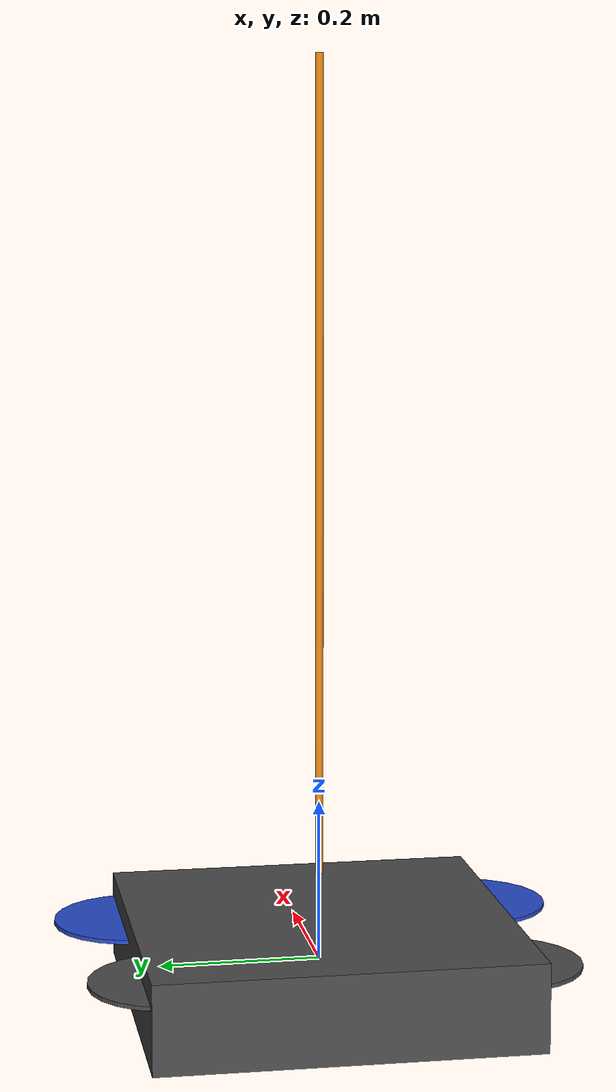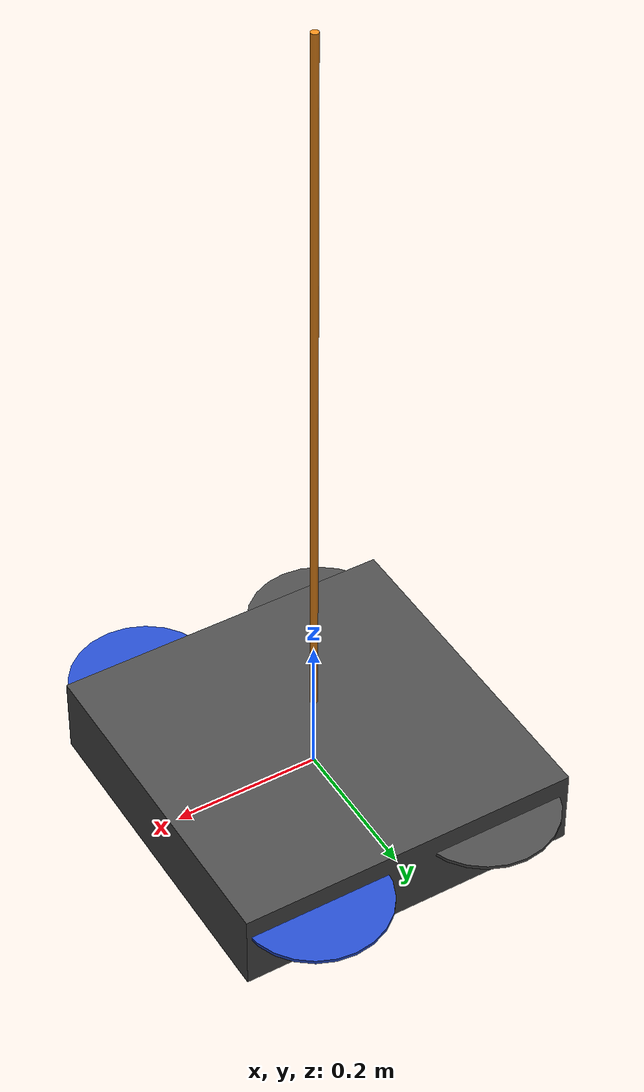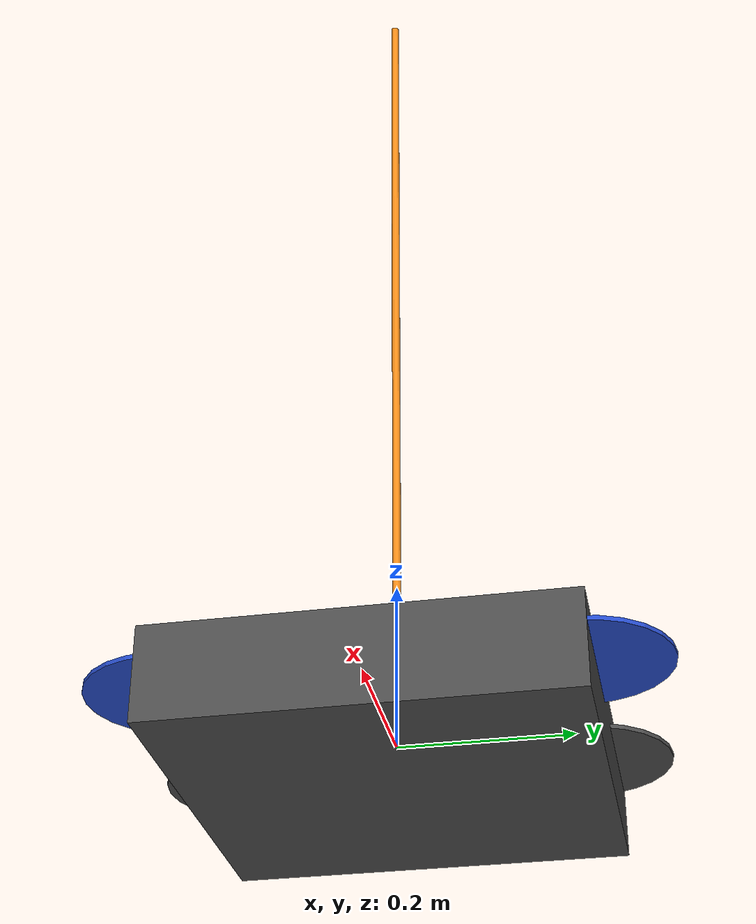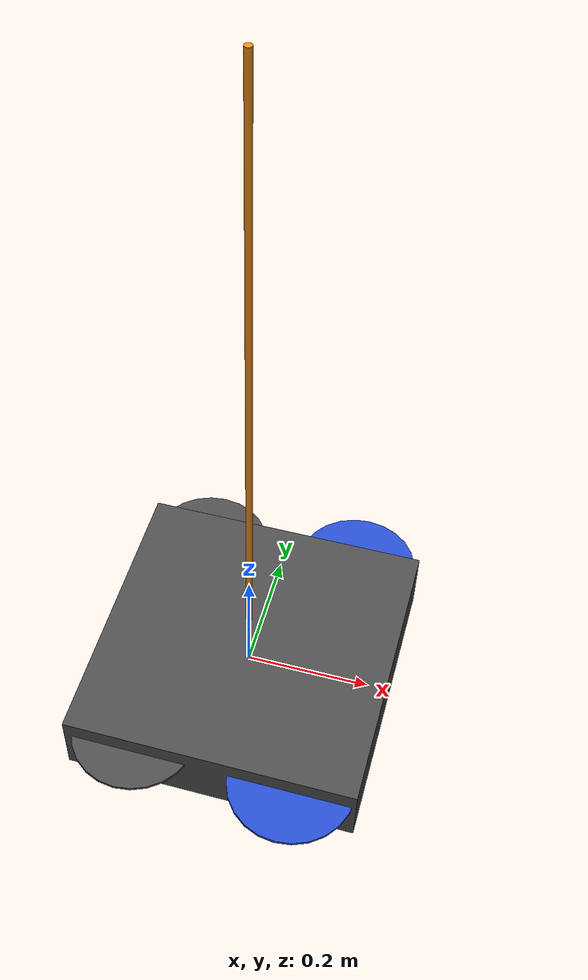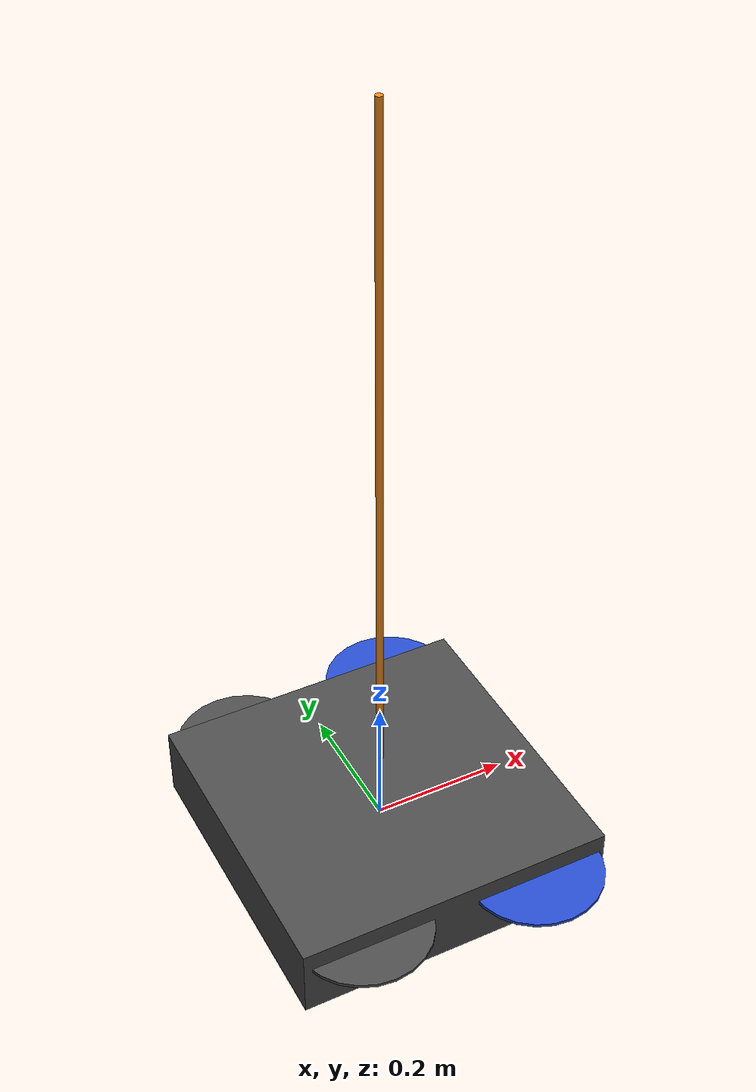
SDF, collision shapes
<sdf version='1.5'>
  <model name='iris'>
    <link name='base_link'>
      <pose>0 0 0 0 -0 0</pose>
      <inertial>
        <pose>0 0 0 0 -0 0</pose>
        <mass>1.5</mass>
        <inertia>
          <ixx>0.0347563</ixx>
          <ixy>0</ixy>
          <ixz>0</ixz>
          <iyy>0.0458929</iyy>
          <iyz>0</iyz>
          <izz>0.0977</izz>
        </inertia>
      </inertial>
      <collision name='base_link_collision'>
        <pose>0 0 0 0 -0 0</pose>
        <geometry>
          <box>
            <size>0.47 0.47 0.11</size>
          </box>
        </geometry>
        <surface>
          <contact>
            <ode/>
          </contact>
          <friction>
            <ode/>
          </friction>
        </surface>
      </collision>
      <visual name='base_link_visual'>
        <pose>0 0 0 0 -0 0</pose>
        <geometry>
          <mesh>
            <scale>1 1 1</scale>
            <uri>model://rotors_description/meshes/iris.dae</uri>
          </mesh>
        </geometry>
        <material>
          <script>
            <name>Gazebo/DarkGrey</name>
            <uri>__default__</uri>
          </script>
        </material>
      </visual>
      <gravity>1</gravity>
      <velocity_decay/>
      <self_collide>0</self_collide>
    </link>

    <link name='link_pendulum'>
      <pose>0 0 -0 0 -0 0</pose>
      <inertial>
        <pose>0 0 0.61 0 -0 0</pose>
        <mass>0.02</mass>
        <inertia>
          <ixx>0.334167</ixx>
          <ixy>0</ixy>
          <ixz>0</ixz>
          <iyy>0.334167</iyy>
          <iyz>0</iyz>
          <izz>0.00166667</izz>
        </inertia>
      </inertial>
      <collision name='collision_stick'>
        <pose>0 0 0.61 0 0 0</pose>
        <geometry>
          <cylinder>
            <radius>0.005</radius>
            <length>1</length>
          </cylinder>
        </geometry>
      </collision>
      <visual name='visual_stick'>
        <pose>0 0 0.61 0 0 0</pose>
        <geometry>
          <cylinder>
            <radius>0.005</radius>
            <length>1</length>
          </cylinder>
        </geometry>
        <material>
          <script>
            <name>Gazebo/Orange</name>
            <uri>file://media/materials/scripts/gazebo.material</uri>
          </script>
        </material>
      </visual>
    </link>
    <joint name='joint_pendulum' type='ball'>
      <pose>0 0 0.11 0 -0 0</pose>
      <child>link_pendulum</child>
      <parent>base_link</parent>
    </joint>
    <plugin name='pendulum' filename='libgazebo_pendulum_plugin.so'>
      <robotNamespace>iris</robotNamespace>
      <jointName>joint_pendulum</jointName>
      <linkName>link_pendulum</linkName>
    </plugin>

    <link name='iris/imu_link'>
      <pose>0 0 0 0 -0 0</pose>
      <inertial>
        <pose>0 0 0 0 -0 0</pose>
        <mass>0.015</mass>
        <inertia>
          <ixx>1e-05</ixx>
          <ixy>0</ixy>
          <ixz>0</ixz>
          <iyy>1e-05</iyy>
          <iyz>0</iyz>
          <izz>1e-05</izz>
        </inertia>
      </inertial>
    </link>
    <joint name='iris/imu_joint' type='revolute'>
      <child>iris/imu_link</child>
      <parent>base_link</parent>
      <axis>
        <xyz>1 0 0</xyz>
        <limit>
          <lower>0</lower>
          <upper>0</upper>
          <effort>0</effort>
          <velocity>0</velocity>
        </limit>
        <dynamics>
          <spring_reference>0</spring_reference>
          <spring_stiffness>0</spring_stiffness>
        </dynamics>
        <use_parent_model_frame>1</use_parent_model_frame>
      </axis>
    </joint>
    <link name='rotor_0'>
      <pose>0.13 -0.22 0.023 0 -0 0</pose>
      <inertial>
        <pose>0 0 0 0 -0 0</pose>
        <mass>0.005</mass>
        <inertia>
          <ixx>9.75e-07</ixx>
          <ixy>0</ixy>
          <ixz>0</ixz>
          <iyy>0.000166704</iyy>
          <iyz>0</iyz>
          <izz>0.000167604</izz>
        </inertia>
      </inertial>
      <collision name='rotor_0_collision'>
        <pose>0 0 0 0 -0 0</pose>
        <geometry>
          <cylinder>
            <length>0.005</length>
            <radius>0.1</radius>
          </cylinder>
        </geometry>
        <surface>
          <contact>
            <ode/>
          </contact>
          <friction>
            <ode/>
          </friction>
        </surface>
      </collision>
      <visual name='rotor_0_visual'>
        <pose>0 0 0 0 -0 0</pose>
        <geometry>
          <mesh>
            <scale>1 1 1</scale>
            <uri>model://rotors_description/meshes/iris_prop_ccw.dae</uri>
          </mesh>
        </geometry>
        <material>
          <script>
            <name>Gazebo/Blue</name>
            <uri>__default__</uri>
          </script>
        </material>
      </visual>
      <gravity>1</gravity>
      <velocity_decay/>
      <self_collide>0</self_collide>
    </link>
    <joint name='rotor_0_joint' type='revolute'>
      <child>rotor_0</child>
      <parent>base_link</parent>
      <axis>
        <xyz>0 0 1</xyz>
        <limit>
          <lower>-1e+16</lower>
          <upper>1e+16</upper>
        </limit>
        <dynamics>
          <spring_reference>0</spring_reference>
          <spring_stiffness>0</spring_stiffness>
        </dynamics>
        <use_parent_model_frame>1</use_parent_model_frame>
      </axis>
    </joint>
    <link name='rotor_1'>
      <pose>-0.13 0.2 0.023 0 -0 0</pose>
      <inertial>
        <pose>0 0 0 0 -0 0</pose>
        <mass>0.005</mass>
        <inertia>
          <ixx>9.75e-07</ixx>
          <ixy>0</ixy>
          <ixz>0</ixz>
          <iyy>0.000166704</iyy>
          <iyz>0</iyz>
          <izz>0.000167604</izz>
        </inertia>
      </inertial>
      <collision name='rotor_1_collision'>
        <pose>0 0 0 0 -0 0</pose>
        <geometry>
          <cylinder>
            <length>0.005</length>
            <radius>0.1</radius>
          </cylinder>
        </geometry>
        <surface>
          <contact>
            <ode/>
          </contact>
          <friction>
            <ode/>
          </friction>
        </surface>
      </collision>
      <visual name='rotor_1_visual'>
        <pose>0 0 0 0 -0 0</pose>
        <geometry>
          <mesh>
            <scale>1 1 1</scale>
            <uri>model://rotors_description/meshes/iris_prop_ccw.dae</uri>
          </mesh>
        </geometry>
        <material>
          <script>
            <name>Gazebo/DarkGrey</name>
            <uri>__default__</uri>
          </script>
        </material>
      </visual>
      <gravity>1</gravity>
      <velocity_decay/>
      <self_collide>0</self_collide>
    </link>
    <joint name='rotor_1_joint' type='revolute'>
      <child>rotor_1</child>
      <parent>base_link</parent>
      <axis>
        <xyz>0 0 1</xyz>
        <limit>
          <lower>-1e+16</lower>
          <upper>1e+16</upper>
        </limit>
        <dynamics>
          <spring_reference>0</spring_reference>
          <spring_stiffness>0</spring_stiffness>
        </dynamics>
        <use_parent_model_frame>1</use_parent_model_frame>
      </axis>
    </joint>
    <link name='rotor_2'>
      <pose>0.13 0.22 0.023 0 -0 0</pose>
      <inertial>
        <pose>0 0 0 0 -0 0</pose>
        <mass>0.005</mass>
        <inertia>
          <ixx>9.75e-07</ixx>
          <ixy>0</ixy>
          <ixz>0</ixz>
          <iyy>0.000166704</iyy>
          <iyz>0</iyz>
          <izz>0.000167604</izz>
        </inertia>
      </inertial>
      <collision name='rotor_2_collision'>
        <pose>0 0 0 0 -0 0</pose>
        <geometry>
          <cylinder>
            <length>0.005</length>
            <radius>0.1</radius>
          </cylinder>
        </geometry>
        <surface>
          <contact>
            <ode/>
          </contact>
          <friction>
            <ode/>
          </friction>
        </surface>
      </collision>
      <visual name='rotor_2_visual'>
        <pose>0 0 0 0 -0 0</pose>
        <geometry>
          <mesh>
            <scale>1 1 1</scale>
            <uri>model://rotors_description/meshes/iris_prop_cw.dae</uri>
          </mesh>
        </geometry>
        <material>
          <script>
            <name>Gazebo/Blue</name>
            <uri>__default__</uri>
          </script>
        </material>
      </visual>
      <gravity>1</gravity>
      <velocity_decay/>
      <self_collide>0</self_collide>
    </link>
    <joint name='rotor_2_joint' type='revolute'>
      <child>rotor_2</child>
      <parent>base_link</parent>
      <axis>
        <xyz>0 0 1</xyz>
        <limit>
          <lower>-1e+16</lower>
          <upper>1e+16</upper>
        </limit>
        <dynamics>
          <spring_reference>0</spring_reference>
          <spring_stiffness>0</spring_stiffness>
        </dynamics>
        <use_parent_model_frame>1</use_parent_model_frame>
      </axis>
    </joint>
    <link name='rotor_3'>
      <pose>-0.13 -0.2 0.023 0 -0 0</pose>
      <inertial>
        <pose>0 0 0 0 -0 0</pose>
        <mass>0.005</mass>
        <inertia>
          <ixx>9.75e-07</ixx>
          <ixy>0</ixy>
          <ixz>0</ixz>
          <iyy>0.000166704</iyy>
          <iyz>0</iyz>
          <izz>0.000167604</izz>
        </inertia>
      </inertial>
      <collision name='rotor_3_collision'>
        <pose>0 0 0 0 -0 0</pose>
        <geometry>
          <cylinder>
            <length>0.005</length>
            <radius>0.1</radius>
          </cylinder>
        </geometry>
        <surface>
          <contact>
            <ode/>
          </contact>
          <friction>
            <ode/>
          </friction>
        </surface>
      </collision>
      <visual name='rotor_3_visual'>
        <pose>0 0 0 0 -0 0</pose>
        <geometry>
          <mesh>
            <scale>1 1 1</scale>
            <uri>model://rotors_description/meshes/iris_prop_cw.dae</uri>
          </mesh>
        </geometry>
        <material>
          <script>
            <name>Gazebo/DarkGrey</name>
            <uri>__default__</uri>
          </script>
        </material>
      </visual>
      <gravity>1</gravity>
      <velocity_decay/>
      <self_collide>0</self_collide>
    </link>
    <joint name='rotor_3_joint' type='revolute'>
      <child>rotor_3</child>
      <parent>base_link</parent>
      <axis>
        <xyz>0 0 1</xyz>
        <limit>
          <lower>-1e+16</lower>
          <upper>1e+16</upper>
        </limit>
        <dynamics>
          <spring_reference>0</spring_reference>
          <spring_stiffness>0</spring_stiffness>
        </dynamics>
        <use_parent_model_frame>1</use_parent_model_frame>
      </axis>
    </joint>
    <plugin name='rosbag' filename='librotors_gazebo_multirotor_base_plugin.so'>
      <robotNamespace>iris</robotNamespace>
      <linkName>base_link</linkName>
      <rotorVelocitySlowdownSim>10</rotorVelocitySlowdownSim>
    </plugin>
    <plugin name='front_right_motor_model' filename='librotors_gazebo_motor_model.so'>
      <robotNamespace>iris</robotNamespace>
      <jointName>rotor_0_joint</jointName>
      <linkName>rotor_0</linkName>
      <turningDirection>ccw</turningDirection>
      <timeConstantUp>0.0125</timeConstantUp>
      <timeConstantDown>0.025</timeConstantDown>
      <maxRotVelocity>838</maxRotVelocity>
      <motorConstant>8.54858e-06</motorConstant>
      <momentConstant>0.16</momentConstant>
      <commandSubTopic>gazebo/command/motor_speed</commandSubTopic>
      <motorNumber>0</motorNumber>
      <rotorDragCoefficient>8.06428e-05</rotorDragCoefficient>
      <rollingMomentCoefficient>1e-06</rollingMomentCoefficient>
      <motorSpeedPubTopic>motor_speed/0</motorSpeedPubTopic>
      <rotorVelocitySlowdownSim>10</rotorVelocitySlowdownSim>
    </plugin>
    <plugin name='back_left_motor_model' filename='librotors_gazebo_motor_model.so'>
      <robotNamespace>iris</robotNamespace>
      <jointName>rotor_1_joint</jointName>
      <linkName>rotor_1</linkName>
      <turningDirection>ccw</turningDirection>
      <timeConstantUp>0.0125</timeConstantUp>
      <timeConstantDown>0.025</timeConstantDown>
      <maxRotVelocity>838</maxRotVelocity>
      <motorConstant>8.54858e-06</motorConstant>
      <momentConstant>0.16</momentConstant>
      <commandSubTopic>gazebo/command/motor_speed</commandSubTopic>
      <motorNumber>1</motorNumber>
      <rotorDragCoefficient>8.06428e-05</rotorDragCoefficient>
      <rollingMomentCoefficient>1e-06</rollingMomentCoefficient>
      <motorSpeedPubTopic>motor_speed/1</motorSpeedPubTopic>
      <rotorVelocitySlowdownSim>10</rotorVelocitySlowdownSim>
    </plugin>
    <plugin name='front_left_motor_model' filename='librotors_gazebo_motor_model.so'>
      <robotNamespace>iris</robotNamespace>
      <jointName>rotor_2_joint</jointName>
      <linkName>rotor_2</linkName>
      <turningDirection>cw</turningDirection>
      <timeConstantUp>0.0125</timeConstantUp>
      <timeConstantDown>0.025</timeConstantDown>
      <maxRotVelocity>838</maxRotVelocity>
      <motorConstant>8.54858e-06</motorConstant>
      <momentConstant>0.16</momentConstant>
      <commandSubTopic>gazebo/command/motor_speed</commandSubTopic>
      <motorNumber>2</motorNumber>
      <rotorDragCoefficient>8.06428e-05</rotorDragCoefficient>
      <rollingMomentCoefficient>1e-06</rollingMomentCoefficient>
      <motorSpeedPubTopic>motor_speed/2</motorSpeedPubTopic>
      <rotorVelocitySlowdownSim>10</rotorVelocitySlowdownSim>
    </plugin>
    <plugin name='back_right_motor_model' filename='librotors_gazebo_motor_model.so'>
      <robotNamespace>iris</robotNamespace>
      <jointName>rotor_3_joint</jointName>
      <linkName>rotor_3</linkName>
      <turningDirection>cw</turningDirection>
      <timeConstantUp>0.0125</timeConstantUp>
      <timeConstantDown>0.025</timeConstantDown>
      <maxRotVelocity>838</maxRotVelocity>
      <motorConstant>8.54858e-06</motorConstant>
      <momentConstant>0.16</momentConstant>
      <commandSubTopic>gazebo/command/motor_speed</commandSubTopic>
      <motorNumber>3</motorNumber>
      <rotorDragCoefficient>8.06428e-05</rotorDragCoefficient>
      <rollingMomentCoefficient>1e-06</rollingMomentCoefficient>
      <motorSpeedPubTopic>motor_speed/3</motorSpeedPubTopic>
      <rotorVelocitySlowdownSim>10</rotorVelocitySlowdownSim>
    </plugin>
    <plugin name='mavlink_interface' filename='librotors_gazebo_mavlink_interface.so'>
      <robotNamespace>iris</robotNamespace>
      <imuSubTopic>imu</imuSubTopic>
      <motorSpeedCommandPubTopic>gazebo/command/motor_speed</motorSpeedCommandPubTopic>
    </plugin>
    <static>0</static>
    <plugin name='rotors_gazebo_imu_plugin' filename='librotors_gazebo_imu_plugin.so'>
      <robotNamespace>iris</robotNamespace>
      <linkName>iris/imu_link</linkName>
      <imuTopic>imu</imuTopic>
      <gyroscopeNoiseDensity>0.0003394</gyroscopeNoiseDensity>
      <gyroscopeRandomWalk>3.8785e-05</gyroscopeRandomWalk>
      <gyroscopeBiasCorrelationTime>1000.0</gyroscopeBiasCorrelationTime>
      <gyroscopeTurnOnBiasSigma>0.0087</gyroscopeTurnOnBiasSigma>
      <accelerometerNoiseDensity>0.004</accelerometerNoiseDensity>
      <accelerometerRandomWalk>0.006</accelerometerRandomWalk>
      <accelerometerBiasCorrelationTime>300.0</accelerometerBiasCorrelationTime>
      <accelerometerTurnOnBiasSigma>0.196</accelerometerTurnOnBiasSigma>
    </plugin>
  </model>
</sdf>
